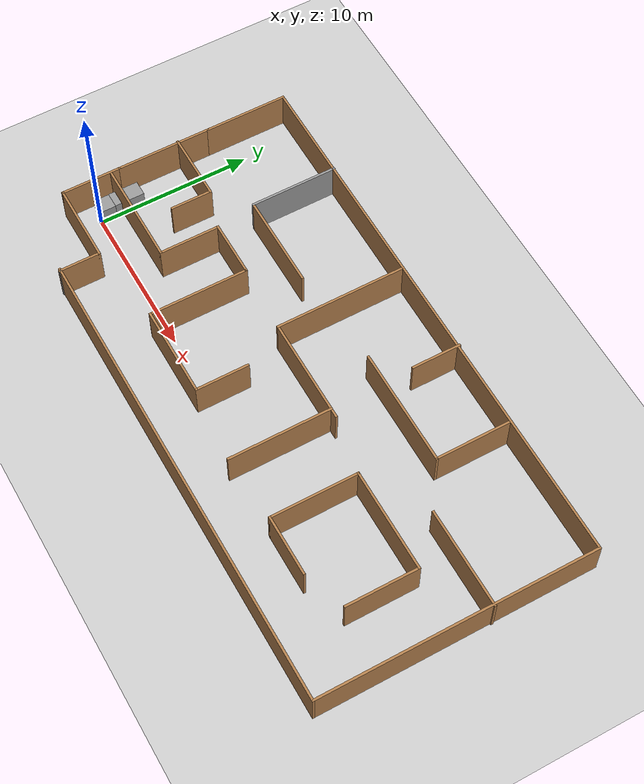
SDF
<sdf version="1.7">
 <world name="default">
  <light name="sun" type="directional">
   <pose>0 0 10 0 -0 0</pose>
   <diffuse>0.8 0.8 0.8 1</diffuse>
   <specular>0.2 0.2 0.2 1</specular>
   <attenuation>
    <range>1000</range>
    <constant>0.9</constant>
    <linear>0.01</linear>
    <quadratic>0.001</quadratic>
   </attenuation>
   <direction>-0.5 0.1 -0.9</direction>
   <spot><inner_angle>0</inner_angle><outer_angle>0</outer_angle><falloff>0</falloff></spot>
  </light>
  <include><uri>model://WoodMaze</uri></include>
  <model name="ground_plane">
   <static>1</static>
   <link name="link">
    <collision name="collision">
     <geometry><plane><normal>0 0 1</normal><size>100 100</size></plane></geometry>
     <surface>
      <contact><collide_bitmask>65535</collide_bitmask></contact>
      <friction><ode><mu>100</mu><mu2>50</mu2></ode></friction>
     </surface>
    </collision>
    <visual name="visual">
     <cast_shadows>0</cast_shadows>
     <geometry><plane><normal>0 0 1</normal><size>100 100</size></plane></geometry>
     <material>
      <script><uri>file://media/materials/scripts/gazebo.material</uri><name>Gazebo/Grey</name></script>
     </material>
    </visual>
   </link>
  </model>
  <gravity>0 0 -9.8</gravity>
  <magnetic_field>6e-06 2.3e-05 -4.2e-05</magnetic_field>
  <atmosphere type="adiabatic"/>
  <physics type="ode">
   <max_step_size>0.001</max_step_size>
   <real_time_factor>1</real_time_factor>
   <real_time_update_rate>1000</real_time_update_rate>
  </physics>
  <scene><ambient>0.4 0.4 0.4 1</ambient><background>0.7 0.7 0.7 1</background><shadows>1</shadows></scene>
  <spherical_coordinates>
   <surface_model>EARTH_WGS84</surface_model>
   <latitude_deg>0</latitude_deg>
   <longitude_deg>0</longitude_deg>
   <elevation>0</elevation>
   <heading_deg>0</heading_deg>
  </spherical_coordinates>
  <model name="unit_box">
   <pose>-0.519772 0.564324 0.499995 -1e-05 -0 0.000113</pose>
   <link name="link">
    <inertial>
     <mass>1</mass>
     <inertia>
      <ixx>0.166667</ixx>
      <ixy>0</ixy>
      <ixz>0</ixz>
      <iyy>0.166667</iyy>
      <iyz>0</iyz>
      <izz>0.166667</izz>
     </inertia>
    </inertial>
    <collision name="collision"><geometry><box><size>1 1 1</size></box></geometry></collision>
    <visual name="visual">
     <geometry><box><size>1 1 1</size></box></geometry>
     <material>
      <script><name>Gazebo/Grey</name><uri>file://media/materials/scripts/gazebo.material</uri></script>
     </material>
    </visual>
   </link>
  </model>
  <model name="unit_box_0">
   <pose>-0.53716 1.56435 0.499995 -1e-05 -0 0.000104</pose>
   <link name="link">
    <inertial>
     <mass>1</mass>
     <inertia>
      <ixx>0.166667</ixx>
      <ixy>0</ixy>
      <ixz>0</ixz>
      <iyy>0.166667</iyy>
      <iyz>0</iyz>
      <izz>0.166667</izz>
     </inertia>
    </inertial>
    <collision name="collision"><geometry><box><size>1 1 1</size></box></geometry></collision>
    <visual name="visual">
     <geometry><box><size>1 1 1</size></box></geometry>
     <material>
      <script><name>Gazebo/Grey</name><uri>file://media/materials/scripts/gazebo.material</uri></script>
     </material>
    </visual>
   </link>
  </model>
  <model name="unit_box_1">
   <pose>-0.53151 2.51662 0.5 0 -0 0</pose>
   <link name="link">
    <inertial>
     <mass>1</mass>
     <inertia>
      <ixx>0.166667</ixx>
      <ixy>0</ixy>
      <ixz>0</ixz>
      <iyy>0.166667</iyy>
      <iyz>0</iyz>
      <izz>0.166667</izz>
     </inertia>
    </inertial>
    <collision name="collision"><geometry><box><size>1 1 1</size></box></geometry></collision>
    <visual name="visual">
     <geometry><box><size>1 1 1</size></box></geometry>
     <material>
      <script><name>Gazebo/Grey</name><uri>file://media/materials/scripts/gazebo.material</uri></script>
     </material>
    </visual>
   </link>
  </model>
 </world>
</sdf>

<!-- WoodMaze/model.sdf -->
<sdf version='1.7'>
  <model name='WoodMaze'>
    <pose>16.4867 4.73957 0 0 -0 0</pose>
    <link name='Wall_0'>
      <collision name='Wall_0_Collision'>
        <geometry>
          <box>
            <size>5.25 0.15 2.5</size>
          </box>
        </geometry>
        <pose>0 0 1.25 0 -0 0</pose>
      </collision>
      <visual name='Wall_0_Visual'>
        <pose>0 0 1.25 0 -0 0</pose>
        <geometry>
          <box>
            <size>5.25 0.15 2.5</size>
          </box>
        </geometry>
        <material>
          <script>
            <uri>file://media/materials/scripts/gazebo.material</uri>
            <name>Gazebo/Wood</name>
          </script>
          <ambient>1 1 1 1</ambient>
        </material>
        <meta>
          <layer>0</layer>
        </meta>
      </visual>
      <pose>-15.3867 -6.39957 0 0 -0 0</pose>
    </link>
    <link name='Wall_1'>
      <collision name='Wall_1_Collision'>
        <geometry>
          <box>
            <size>2.75 0.15 2.5</size>
          </box>
        </geometry>
        <pose>0 0 1.25 0 -0 0</pose>
      </collision>
      <visual name='Wall_1_Visual'>
        <pose>0 0 1.25 0 -0 0</pose>
        <geometry>
          <box>
            <size>2.75 0.15 2.5</size>
          </box>
        </geometry>
        <material>
          <script>
            <uri>file://media/materials/scripts/gazebo.material</uri>
            <name>Gazebo/Wood</name>
          </script>
          <ambient>1 1 1 1</ambient>
        </material>
        <meta>
          <layer>0</layer>
        </meta>
      </visual>
      <pose>-12.8367 -7.69957 0 0 -0 -1.5708</pose>
    </link>
    <link name='Wall_10'>
      <collision name='Wall_10_Collision'>
        <geometry>
          <box>
            <size>4 0.15 2.5</size>
          </box>
        </geometry>
        <pose>0 0 1.25 0 -0 0</pose>
      </collision>
      <visual name='Wall_10_Visual'>
        <pose>0 0 1.25 0 -0 0</pose>
        <geometry>
          <box>
            <size>4 0.15 2.5</size>
          </box>
        </geometry>
        <material>
          <script>
            <uri>file://media/materials/scripts/gazebo.material</uri>
            <name>Gazebo/Wood</name>
          </script>
          <ambient>1 1 1 1</ambient>
        </material>
        <meta>
          <layer>0</layer>
        </meta>
      </visual>
      <pose>-17.9367 -4.47457 0 0 -0 1.5708</pose>
    </link>
    <link name='Wall_11'>
      <collision name='Wall_11_Collision'>
        <geometry>
          <box>
            <size>6.25 0.15 2.5</size>
          </box>
        </geometry>
        <pose>0 0 1.25 0 -0 0</pose>
      </collision>
      <visual name='Wall_11_Visual'>
        <pose>0 0 1.25 0 -0 0</pose>
        <geometry>
          <box>
            <size>6.25 0.15 2.5</size>
          </box>
        </geometry>
        <material>
          <script>
            <uri>file://media/materials/scripts/gazebo.material</uri>
            <name>Gazebo/Wood</name>
          </script>
          <ambient>1 1 1 1</ambient>
        </material>
        <meta>
          <layer>0</layer>
        </meta>
      </visual>
      <pose>-17.9367 0.500428 0 0 -0 1.5708</pose>
    </link>
    <link name='Wall_12'>
      <collision name='Wall_12_Collision'>
        <geometry>
          <box>
            <size>5.5 0.15 2.5</size>
          </box>
        </geometry>
        <pose>0 0 1.25 0 -0 0</pose>
      </collision>
      <visual name='Wall_12_Visual'>
        <pose>0 0 1.25 0 -0 0</pose>
        <geometry>
          <box>
            <size>5.5 0.15 2.5</size>
          </box>
        </geometry>
        <material>
          <script>
            <uri>file://media/materials/scripts/gazebo.material</uri>
            <name>Gazebo/Wood</name>
          </script>
          <ambient>1 1 1 1</ambient>
        </material>
        <meta>
          <layer>0</layer>
        </meta>
      </visual>
      <pose>-17.9367 6.22543 0 0 -0 1.5708</pose>
    </link>
    <link name='Wall_13'>
      <collision name='Wall_13_Collision'>
        <geometry>
          <box>
            <size>36 0.15 2.5</size>
          </box>
        </geometry>
        <pose>0 0 1.25 0 -0 0</pose>
      </collision>
      <visual name='Wall_13_Visual'>
        <pose>0 0 1.25 0 -0 0</pose>
        <geometry>
          <box>
            <size>36 0.15 2.5</size>
          </box>
        </geometry>
        <material>
          <script>
            <uri>file://media/materials/scripts/gazebo.material</uri>
            <name>Gazebo/Wood</name>
          </script>
          <ambient>1 1 1 1</ambient>
        </material>
        <meta>
          <layer>0</layer>
        </meta>
      </visual>
      <pose>-0.011699 8.90043 0 0 -0 0</pose>
    </link>
    <link name='Wall_14'>
      <collision name='Wall_14_Collision'>
        <geometry>
          <box>
            <size>18 0.15 2.5</size>
          </box>
        </geometry>
        <pose>0 0 1.25 0 -0 0</pose>
      </collision>
      <visual name='Wall_14_Visual'>
        <pose>0 0 1.25 0 -0 0</pose>
        <geometry>
          <box>
            <size>18 0.15 2.5</size>
          </box>
        </geometry>
        <material>
          <script>
            <uri>file://media/materials/scripts/gazebo.material</uri>
            <name>Gazebo/Wood</name>
          </script>
          <ambient>0.921569 0.807843 0.615686 1</ambient>
        </material>
        <meta>
          <layer>0</layer>
        </meta>
      </visual>
      <pose>17.9133 -0.024572 0 0 -0 -1.5708</pose>
    </link>
    <link name='Wall_16'>
      <collision name='Wall_16_Collision'>
        <geometry>
          <box>
            <size>31 0.15 2.5</size>
          </box>
        </geometry>
        <pose>0 0 1.25 0 -0 0</pose>
      </collision>
      <visual name='Wall_16_Visual'>
        <pose>0 0 1.25 0 -0 0</pose>
        <geometry>
          <box>
            <size>31 0.15 2.5</size>
          </box>
        </geometry>
        <material>
          <script>
            <uri>file://media/materials/scripts/gazebo.material</uri>
            <name>Gazebo/Wood</name>
          </script>
          <ambient>1 1 1 1</ambient>
        </material>
        <meta>
          <layer>0</layer>
        </meta>
      </visual>
      <pose>2.4883 -8.94957 0 0 -0 3.14159</pose>
    </link>
    <link name='Wall_18'>
      <collision name='Wall_18_Collision'>
        <geometry>
          <box>
            <size>5.75 0.15 2.5</size>
          </box>
        </geometry>
        <pose>0 0 1.25 0 -0 0</pose>
      </collision>
      <visual name='Wall_18_Visual'>
        <pose>0 0 1.25 0 -0 0</pose>
        <geometry>
          <box>
            <size>5.75 0.15 2.5</size>
          </box>
        </geometry>
        <material>
          <script>
            <uri>file://media/materials/scripts/gazebo.material</uri>
            <name>Gazebo/Grey</name>
          </script>
          <ambient>1 1 1 1</ambient>
        </material>
        <meta>
          <layer>0</layer>
        </meta>
      </visual>
      <pose>-11.489 6.12882 0 0 -0 -1.5708</pose>
    </link>
    <link name='Wall_19'>
      <collision name='Wall_19_Collision'>
        <geometry>
          <box>
            <size>6.25 0.15 2.5</size>
          </box>
        </geometry>
        <pose>0 0 1.25 0 -0 0</pose>
      </collision>
      <visual name='Wall_19_Visual'>
        <pose>0 0 1.25 0 -0 0</pose>
        <geometry>
          <box>
            <size>6.25 0.15 2.5</size>
          </box>
        </geometry>
        <material>
          <script>
            <uri>file://media/materials/scripts/gazebo.material</uri>
            <name>Gazebo/Wood</name>
          </script>
          <ambient>1 1 1 1</ambient>
        </material>
        <meta>
          <layer>0</layer>
        </meta>
      </visual>
      <pose>-8.43895 3.32882 0 0 -0 0</pose>
    </link>
    <link name='Wall_2'>
      <collision name='Wall_2_Collision'>
        <geometry>
          <box>
            <size>0.15 0.15 2.5</size>
          </box>
        </geometry>
        <pose>0 0 1.25 0 -0 0</pose>
      </collision>
      <visual name='Wall_2_Visual'>
        <pose>0 0 1.25 0 -0 0</pose>
        <geometry>
          <box>
            <size>0.15 0.15 2.5</size>
          </box>
        </geometry>
        <material>
          <script>
            <uri>file://media/materials/scripts/gazebo.material</uri>
            <name>Gazebo/Grey</name>
          </script>
          <ambient>1 1 1 1</ambient>
        </material>
        <meta>
          <layer>0</layer>
        </meta>
      </visual>
      <pose>-12.8367 -8.99957 0 0 -0 0</pose>
    </link>
    <link name='Wall_21'>
      <collision name='Wall_21_Collision'>
        <geometry>
          <box>
            <size>4.5 0.15 2.5</size>
          </box>
        </geometry>
        <pose>0 0 1.25 0 -0 0</pose>
      </collision>
      <visual name='Wall_21_Visual'>
        <pose>0 0 1.25 0 -0 0</pose>
        <geometry>
          <box>
            <size>4.5 0.15 2.5</size>
          </box>
        </geometry>
        <material>
          <script>
            <uri>file://media/materials/scripts/gazebo.material</uri>
            <name>Gazebo/Wood</name>
          </script>
          <ambient>1 1 1 1</ambient>
        </material>
        <meta>
          <layer>0</layer>
        </meta>
      </visual>
      <pose>-15.8236 1.49932 0 0 -0 0</pose>
    </link>
    <link name='Wall_22'>
      <collision name='Wall_22_Collision'>
        <geometry>
          <box>
            <size>2.75 0.15 2.5</size>
          </box>
        </geometry>
        <pose>0 0 1.25 0 -0 0</pose>
      </collision>
      <visual name='Wall_22_Visual'>
        <pose>0 0 1.25 0 -0 0</pose>
        <geometry>
          <box>
            <size>2.75 0.15 2.5</size>
          </box>
        </geometry>
        <material>
          <script>
            <uri>file://media/materials/scripts/gazebo.material</uri>
            <name>Gazebo/Wood</name>
          </script>
          <ambient>1 1 1 1</ambient>
        </material>
        <meta>
          <layer>0</layer>
        </meta>
      </visual>
      <pose>-13.6486 0.199324 0 0 -0 -1.5708</pose>
    </link>
    <link name='Wall_24'>
      <collision name='Wall_24_Collision'>
        <geometry>
          <box>
            <size>7 0.15 2.5</size>
          </box>
        </geometry>
        <pose>0 0 1.25 0 -0 0</pose>
      </collision>
      <visual name='Wall_24_Visual'>
        <pose>0 0 1.25 0 -0 0</pose>
        <geometry>
          <box>
            <size>7 0.15 2.5</size>
          </box>
        </geometry>
        <material>
          <script>
            <uri>file://media/materials/scripts/gazebo.material</uri>
            <name>Gazebo/Wood</name>
          </script>
          <ambient>1 1 1 1</ambient>
        </material>
        <meta>
          <layer>0</layer>
        </meta>
      </visual>
      <pose>-14.5028 -3.17064 0 0 -0 0</pose>
    </link>
    <link name='Wall_26'>
      <collision name='Wall_26_Collision'>
        <geometry>
          <box>
            <size>4 0.15 2.5</size>
          </box>
        </geometry>
        <pose>0 0 1.25 0 -0 0</pose>
      </collision>
      <visual name='Wall_26_Visual'>
        <pose>0 0 1.25 0 -0 0</pose>
        <geometry>
          <box>
            <size>4 0.15 2.5</size>
          </box>
        </geometry>
        <material>
          <script>
            <uri>file://media/materials/scripts/gazebo.material</uri>
            <name>Gazebo/Wood</name>
          </script>
          <ambient>1 1 1 1</ambient>
        </material>
        <meta>
          <layer>0</layer>
        </meta>
      </visual>
      <pose>-11.0778 -1.24564 0 0 -0 1.5708</pose>
    </link>
    <link name='Wall_27'>
      <collision name='Wall_27_Collision'>
        <geometry>
          <box>
            <size>3.75 0.15 2.5</size>
          </box>
        </geometry>
        <pose>0 0 1.25 0 -0 0</pose>
      </collision>
      <visual name='Wall_27_Visual'>
        <pose>0 0 1.25 0 -0 0</pose>
        <geometry>
          <box>
            <size>3.75 0.15 2.5</size>
          </box>
        </geometry>
        <material>
          <script>
            <uri>file://media/materials/scripts/gazebo.material</uri>
            <name>Gazebo/Wood</name>
          </script>
          <ambient>1 1 1 1</ambient>
        </material>
        <meta>
          <layer>0</layer>
        </meta>
      </visual>
      <pose>-9.27785 0.679358 0 0 -0 0</pose>
    </link>
    <link name='Wall_28'>
      <collision name='Wall_28_Collision'>
        <geometry>
          <box>
            <size>6.5 0.15 2.5</size>
          </box>
        </geometry>
        <pose>0 0 1.25 0 -0 0</pose>
      </collision>
      <visual name='Wall_28_Visual'>
        <pose>0 0 1.25 0 -0 0</pose>
        <geometry>
          <box>
            <size>6.5 0.15 2.5</size>
          </box>
        </geometry>
        <material>
          <script>
            <uri>file://media/materials/scripts/gazebo.material</uri>
            <name>Gazebo/Wood</name>
          </script>
          <ambient>1 1 1 1</ambient>
        </material>
        <meta>
          <layer>0</layer>
        </meta>
      </visual>
      <pose>-7.47785 -2.49564 0 0 -0 -1.5708</pose>
    </link>
    <link name='Wall_29'>
      <collision name='Wall_29_Collision'>
        <geometry>
          <box>
            <size>6 0.15 2.5</size>
          </box>
        </geometry>
        <pose>0 0 1.25 0 -0 0</pose>
      </collision>
      <visual name='Wall_29_Visual'>
        <pose>0 0 1.25 0 -0 0</pose>
        <geometry>
          <box>
            <size>6 0.15 2.5</size>
          </box>
        </geometry>
        <material>
          <script>
            <uri>file://media/materials/scripts/gazebo.material</uri>
            <name>Gazebo/Wood</name>
          </script>
          <ambient>1 1 1 1</ambient>
        </material>
        <meta>
          <layer>0</layer>
        </meta>
      </visual>
      <pose>-4.55285 -5.67064 0 0 -0 0</pose>
    </link>
    <link name='Wall_30'>
      <collision name='Wall_30_Collision'>
        <geometry>
          <box>
            <size>3.5 0.15 2.5</size>
          </box>
        </geometry>
        <pose>0 0 1.25 0 -0 0</pose>
      </collision>
      <visual name='Wall_30_Visual'>
        <pose>0 0 1.25 0 -0 0</pose>
        <geometry>
          <box>
            <size>3.5 0.15 2.5</size>
          </box>
        </geometry>
        <material>
          <script>
            <uri>file://media/materials/scripts/gazebo.material</uri>
            <name>Gazebo/Wood</name>
          </script>
          <ambient>1 1 1 1</ambient>
        </material>
        <meta>
          <layer>0</layer>
        </meta>
      </visual>
      <pose>-1.62785 -3.99564 0 0 -0 1.5708</pose>
    </link>
    <link name='Wall_33'>
      <collision name='Wall_33_Collision'>
        <geometry>
          <box>
            <size>8.5 0.15 2.5</size>
          </box>
        </geometry>
        <pose>0 0 1.25 0 -0 0</pose>
      </collision>
      <visual name='Wall_33_Visual'>
        <pose>0 0 1.25 0 -0 0</pose>
        <geometry>
          <box>
            <size>8.5 0.15 2.5</size>
          </box>
        </geometry>
        <material>
          <script>
            <uri>file://media/materials/scripts/gazebo.material</uri>
            <name>Gazebo/Wood</name>
          </script>
          <ambient>1 1 1 1</ambient>
        </material>
        <meta>
          <layer>0</layer>
        </meta>
      </visual>
      <pose>-3.06886 4.6123 0 0 -0 -1.5708</pose>
    </link>
    <link name='Wall_34'>
      <collision name='Wall_34_Collision'>
        <geometry>
          <box>
            <size>7 0.15 2.5</size>
          </box>
        </geometry>
        <pose>0 0 1.25 0 -0 0</pose>
      </collision>
      <visual name='Wall_34_Visual'>
        <pose>0 0 1.25 0 -0 0</pose>
        <geometry>
          <box>
            <size>7 0.15 2.5</size>
          </box>
        </geometry>
        <material>
          <script>
            <uri>file://media/materials/scripts/gazebo.material</uri>
            <name>Gazebo/Wood</name>
          </script>
          <ambient>1 1 1 1</ambient>
        </material>
        <meta>
          <layer>0</layer>
        </meta>
      </visual>
      <pose>0.356137 0.437301 0 0 -0 0</pose>
    </link>
    <link name='Wall_36'>
      <collision name='Wall_36_Collision'>
        <geometry>
          <box>
            <size>5 0.15 2.5</size>
          </box>
        </geometry>
        <pose>0 0 1.25 0 -0 0</pose>
      </collision>
      <visual name='Wall_36_Visual'>
        <pose>0 0 1.25 0 -0 0</pose>
        <geometry>
          <box>
            <size>5 0.15 2.5</size>
          </box>
        </geometry>
        <material>
          <script>
            <uri>file://media/materials/scripts/gazebo.material</uri>
            <name>Gazebo/Wood</name>
          </script>
          <ambient>1 1 1 1</ambient>
        </material>
        <meta>
          <layer>0</layer>
        </meta>
      </visual>
      <pose>8.88908 6.43306 0 0 -0 -1.5708</pose>
    </link>
    <link name='Wall_37'>
      <collision name='Wall_37_Collision'>
        <geometry>
          <box>
            <size>7.75 0.15 2.5</size>
          </box>
        </geometry>
        <pose>0 0 1.25 0 -0 0</pose>
      </collision>
      <visual name='Wall_37_Visual'>
        <pose>0 0 1.25 0 -0 0</pose>
        <geometry>
          <box>
            <size>7.75 0.15 2.5</size>
          </box>
        </geometry>
        <material>
          <script>
            <uri>file://media/materials/scripts/gazebo.material</uri>
            <name>Gazebo/Wood</name>
          </script>
          <ambient>0.988235 0.913725 0.309804 1</ambient>
        </material>
        <meta>
          <layer>0</layer>
        </meta>
      </visual>
      <pose>5.08908 4.00806 0 0 -0 3.14159</pose>
    </link>
    <link name='Wall_39'>
      <collision name='Wall_39_Collision'>
        <geometry>
          <box>
            <size>3.25 0.15 2.5</size>
          </box>
        </geometry>
        <pose>0 0 1.25 0 -0 0</pose>
      </collision>
      <visual name='Wall_39_Visual'>
        <pose>0 0 1.25 0 -0 0</pose>
        <geometry>
          <box>
            <size>3.25 0.15 2.5</size>
          </box>
        </geometry>
        <material>
          <script>
            <uri>file://media/materials/scripts/gazebo.material</uri>
            <name>Gazebo/Wood</name>
          </script>
          <ambient>1 1 1 1</ambient>
        </material>
        <meta>
          <layer>0</layer>
        </meta>
      </visual>
      <pose>3.15776 7.44957 0 0 -0 -1.5708</pose>
    </link>
    <link name='Wall_41'>
      <collision name='Wall_41_Collision'>
        <geometry>
          <box>
            <size>6.5 0.15 2.5</size>
          </box>
        </geometry>
        <pose>0 0 1.25 0 -0 0</pose>
      </collision>
      <visual name='Wall_41_Visual'>
        <pose>0 0 1.25 0 -0 0</pose>
        <geometry>
          <box>
            <size>6.5 0.15 2.5</size>
          </box>
        </geometry>
        <material>
          <script>
            <uri>file://media/materials/scripts/gazebo.material</uri>
            <name>Gazebo/Wood</name>
          </script>
          <ambient>1 1 1 1</ambient>
        </material>
        <meta>
          <layer>0</layer>
        </meta>
      </visual>
      <pose>14.8236 2.13614 0 0 -0 0</pose>
    </link>
    <link name='Wall_43'>
      <collision name='Wall_43_Collision'>
        <geometry>
          <box>
            <size>6.75 0.15 2.5</size>
          </box>
        </geometry>
        <pose>0 0 1.25 0 -0 0</pose>
      </collision>
      <visual name='Wall_43_Visual'>
        <pose>0 0 1.25 0 -0 0</pose>
        <geometry>
          <box>
            <size>6.75 0.15 2.5</size>
          </box>
        </geometry>
        <material>
          <script>
            <uri>file://media/materials/scripts/gazebo.material</uri>
            <name>Gazebo/Wood</name>
          </script>
          <ambient>1 1 1 1</ambient>
        </material>
        <meta>
          <layer>0</layer>
        </meta>
      </visual>
      <pose>3.22851 -2.86203 0 0 -0 -1.5708</pose>
    </link>
    <link name='Wall_45'>
      <collision name='Wall_45_Collision'>
        <geometry>
          <box>
            <size>5.75 0.15 2.5</size>
          </box>
        </geometry>
        <pose>0 0 1.25 0 -0 0</pose>
      </collision>
      <visual name='Wall_45_Visual'>
        <pose>0 0 1.25 0 -0 0</pose>
        <geometry>
          <box>
            <size>5.75 0.15 2.5</size>
          </box>
        </geometry>
        <material>
          <script>
            <uri>file://media/materials/scripts/gazebo.material</uri>
            <name>Gazebo/Wood</name>
          </script>
          <ambient>0.988235 0.913725 0.309804 1</ambient>
        </material>
        <meta>
          <layer>0</layer>
        </meta>
      </visual>
      <pose>7.54469 -3.0696 0 0 -0 -1.5708</pose>
    </link>
    <link name='Wall_46'>
      <collision name='Wall_46_Collision'>
        <geometry>
          <box>
            <size>4 0.15 2.5</size>
          </box>
        </geometry>
        <pose>0 0 1.25 0 -0 0</pose>
      </collision>
      <visual name='Wall_46_Visual'>
        <pose>0 0 1.25 0 -0 0</pose>
        <geometry>
          <box>
            <size>4 0.15 2.5</size>
          </box>
        </geometry>
        <material>
          <script>
            <uri>file://media/materials/scripts/gazebo.material</uri>
            <name>Gazebo/Wood</name>
          </script>
          <ambient>0.988235 0.913725 0.309804 1</ambient>
        </material>
        <meta>
          <layer>0</layer>
        </meta>
      </visual>
      <pose>9.46969 -5.8696 0 0 -0 0</pose>
    </link>
    <link name='Wall_48'>
      <collision name='Wall_48_Collision'>
        <geometry>
          <box>
            <size>6.75 0.15 2.5</size>
          </box>
        </geometry>
        <pose>0 0 1.25 0 -0 0</pose>
      </collision>
      <visual name='Wall_48_Visual'>
        <pose>0 0 1.25 0 -0 0</pose>
        <geometry>
          <box>
            <size>6.75 0.15 2.5</size>
          </box>
        </geometry>
        <material>
          <script>
            <uri>file://media/materials/scripts/gazebo.material</uri>
            <name>Gazebo/Wood</name>
          </script>
          <ambient>1 1 1 1</ambient>
        </material>
        <meta>
          <layer>0</layer>
        </meta>
      </visual>
      <pose>10.8447 -0.269603 0 0 -0 0</pose>
    </link>
    <link name='Wall_49'>
      <collision name='Wall_49_Collision'>
        <geometry>
          <box>
            <size>4.75 0.15 2.5</size>
          </box>
        </geometry>
        <pose>0 0 1.25 0 -0 0</pose>
      </collision>
      <visual name='Wall_49_Visual'>
        <pose>0 0 1.25 0 -0 0</pose>
        <geometry>
          <box>
            <size>4.75 0.15 2.5</size>
          </box>
        </geometry>
        <material>
          <script>
            <uri>file://media/materials/scripts/gazebo.material</uri>
            <name>Gazebo/Wood</name>
          </script>
          <ambient>1 1 1 1</ambient>
        </material>
        <meta>
          <layer>0</layer>
        </meta>
      </visual>
      <pose>14.1447 -2.5696 0 0 -0 -1.5708</pose>
    </link>
    <static>1</static>
  </model>
</sdf>
